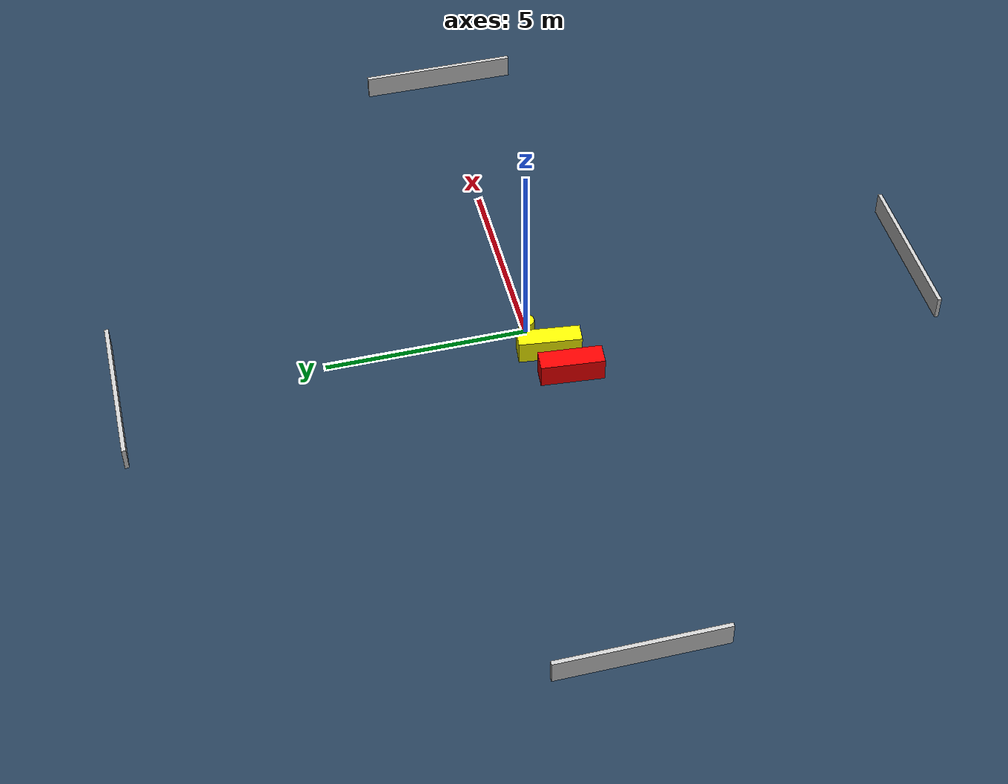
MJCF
<?xml version="1.0" ?>
<mujoco model="generated_environment">
  <option timestep="0.01" integrator="RK4" cone="elliptic"/>
  <default>
    <geom density="1"/>
  </default>
  <asset>
    <texture builtin="gradient" height="3072" name="skybox" rgb1="0.3 0.5 0.7" rgb2="0 0 0" type="skybox" width="512"/>
    <texture builtin="checker" height="300" name="groundplane" rgb1="0.2 0.3 0.4" rgb2="0.1 0.2 0.3" type="2d" width="300"/>
    <material name="groundplane" reflectance="0.2" texrepeat="5 5" texture="groundplane"/>
  </asset>
  <worldbody>
    <light dir="0 0 -1" directional="true" pos="0 0 1.5"/>
    <geom condim="3" friction="0.5 0.005 0.001" material="groundplane" name="floor" pos="0 0 0" size="0 0 0.05" type="plane"/>
    <body name="walls">
      <geom name="wall_1" condim="4" pos="-10.0 0.0 0.3" rgba="0.800000011920929 0.800000011920929 0.800000011920929 1.0" size="0.05 2.0 0.3" type="box"/>
      <geom name="wall_2" condim="4" pos="10.0 0.0 0.3" rgba="0.800000011920929 0.800000011920929 0.800000011920929 1.0" size="0.05 2.0 0.3" type="box"/>
      <geom name="wall_3" condim="4" pos="0.0 -10.0 0.3" rgba="0.800000011920929 0.800000011920929 0.800000011920929 1.0" size="2.0 0.05 0.3" type="box"/>
      <geom name="wall_4" condim="4" pos="0.0 10.0 0.3" rgba="0.800000011920929 0.800000011920929 0.800000011920929 1.0" size="2.0 0.05 0.3" type="box"/>
    </body>
    <body name="robot">
      <joint name="joint_x" type="slide" pos="0 0 0" axis="1 0 0"/>
      <joint name="joint_y" type="slide" pos="0 0 0" axis="0 1 0"/>
      <geom name="robot" type="cylinder" pos="0.0 0.0 0.2" size="0.2 0.2 0.0" mass="5.0" friction="1.0 0.005 0.0001" condim="4" rgba="1.0 1.0 0.0 1.0"/>
    </body>
    <body name="obstacle_1_movable">
      <geom name="obstacle_1_movable" condim="4" pos="-0.8192401821079531 -0.3703842506686151 0.3" euler="0 0 263.3847608794081" friction="0.0 0.005 0.001" rgba="1.0 1.0 0.0 1.0" size="0.7752779984651266 0.2380908218173522 0.3" type="box" mass="0.1"/>
      <joint type="free"/>
    </body>
    <body name="obstacle_2_static">
      <geom name="obstacle_2_static" condim="4" pos="-1.6486444462525227 -0.7016316717633444 0.3" euler="0 0 174.89244519720734" friction="0.0 0.005 0.001" rgba="1.0 0.0 0.0 1.0" size="0.2648707524816976 0.7809825528755723 0.3" type="box"/>
    </body>
  </worldbody>
  <actuator>
    <motor name="actuator_x" joint="joint_x" gear="1" ctrlrange="-1 1"/>
    <motor name="actuator_y" joint="joint_y" gear="1" ctrlrange="-1 1"/>
  </actuator>
</mujoco>
